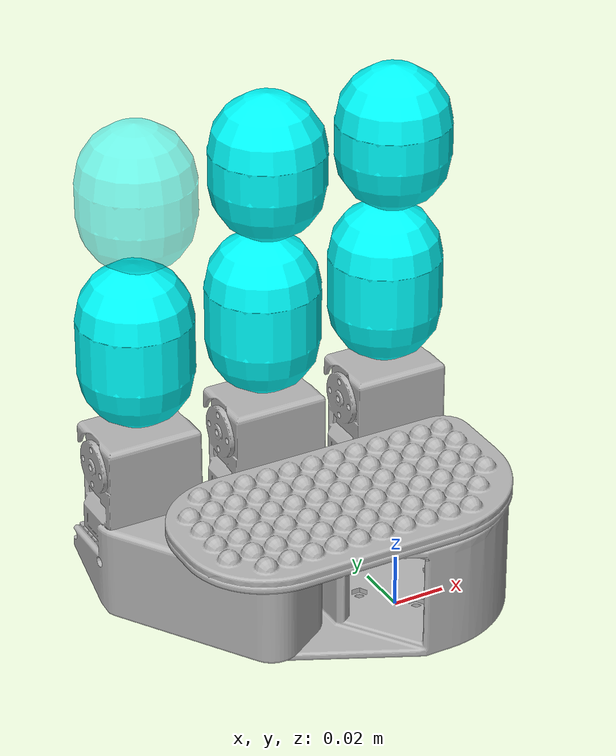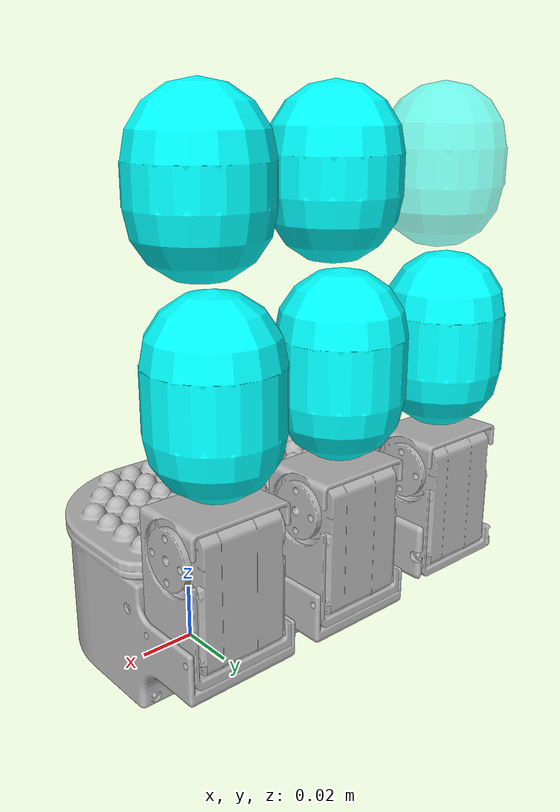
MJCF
<mujoco model="hand_asembly_ver2_URDF_5">
  <compiler angle="radian" meshdir="./mjcf/assets/hand_camera_efim"/>
  <option iterations="20"/>

  <default>
    <joint damping=".5"/>
    <position kp="1"/>
    <geom density="800" rgba="0.7 0.7 0.7 1" contype="0" conaffinity="0" group="0"/>

    <default class="colision_A">
      <geom type="box" rgba="0.1 0.5 0.1 0.0" contype="2" conaffinity="3" group="1"/>
    </default>
    <default class="colision_B">
      <geom type="box" rgba="0.1 0.5 0.1 0.5" contype="4" conaffinity="1" group="2"/>
    </default>

  </default>

  <asset>
    <texture type="skybox" builtin="gradient" rgb1="1 1 1" rgb2="0.5 0.5 0.5" width="265" height="256"/>

    <mesh name="base_link" file="base_link.stl"/>
    <mesh name="proximal_thumb" file="proximal_thumb.stl"/>
    <mesh name="mideal_thumb" file="mideal_thumb.stl"/>
    <mesh name="distal_thumb" file="distal_thumb.stl"/>
    <mesh name="proximal_finger_first" file="proximal_finger_first.stl"/>
    <mesh name="mideal_finger_first" file="mideal_finger_first.stl"/>
    <mesh name="distal_finger_first" file="distal_finger_first.stl"/>
    <mesh name="proximal_finger_second" file="proximal_finger_second.stl"/>
    <mesh name="mideal_finger_second" file="mideal_finger_second.stl"/>
    <mesh name="distal_finger_second" file="distal_finger_second.stl"/>
  </asset>

  <worldbody>
    <light directional="true" diffuse="0.4 0.4 0.4" specular="0.1 0.1 0.1" pos="0 0 5.0" dir="0 0 -1" castshadow="false" />
    <light directional="true" diffuse="0.6 0.6 0.6" specular="0.2 0.2 0.2" pos="0 0 4" dir="0 0 -1" />

    <!-- PALM -->
    <body name="palm" pos="0 0 0">
      <geom type="mesh" mesh="base_link"/>
      <geom pos="-0.0302 0.04346 0.025" quat="1 0 0 0" type="mesh" mesh="proximal_finger_first"/>
      <geom pos="0.0196 0.04346 0.025" quat="1 0 0 0" type="mesh" mesh="proximal_finger_second"/>

      <!-- THUMB -->
      <body name="proximal_thumb" pos="-0.05532 -0.00754 0.0075">
        <inertial pos="-0.015654 0.029955 0.02991" quat="0.664062 0.66104 0.252428 0.241512" mass="0.1524" diaginertia="5.00908e-05 4.26441e-05 3.43441e-05"/>
        <joint name="joint_proximal_thumb" pos="0 0 0" axis="0 0 -1" range="-3.14 0"/>
        <geom type="mesh" mesh="proximal_thumb"/>

        <body name="mideal_thumb" pos="-0.024495 0.05232 0.05561">
          <inertial pos="0.00038305 -0.0013227 0.042746" quat="0.692641 0.0241494 -0.0128903 0.720763" mass="0.080951" diaginertia="2.93704e-05 2.29283e-05 1.49522e-05"/>
          <joint name="joint_mideal_thumb" pos="0 0 0" axis="1 0 0" range="-1.0 1.0"/>

          <!-- CAPSULE -->
          <geom name = "mideal_thumb" type="capsule" size="0.021 0.01" pos="0 0 0.045" rgba="0 1 1 1"/>

          <body name="distal_thumb" pos="0 0 0.05861">
            <joint name="joint_distal_thumb" pos="0 0 0" axis="1 0 0" range="-1.57 1.57"/>
            <!-- CAPSULE -->
            <geom name = "distal_thumb" type="capsule" size="0.021 0.006" pos="0 -0.0045 0.045" rgba="0 1 1 0.5"/>

          </body>

        </body>
      </body>

      <!-- FINGER FIRST -->
      <body name="mideal_finger_first" pos="-0.029825 0.04486 0.06311">
        <inertial pos="0.00038305 -0.00132274 0.0427465" quat="0.692641 0.0241503 -0.0128906 0.720763" mass="0.0809511" diaginertia="2.93701e-05 2.2928e-05 1.49524e-05"/>
        <joint name="joint_mideal_finger_first" pos="0 0 0" axis="1 0 0" range="-1.0 1.0"/>

        <!-- CAPSULE -->
        <geom name = "mideal_f_finger" type="capsule" size="0.021 0.01" pos="0 0 0.045" rgba="0 1 1 1"/>

        <body name="distal_finger_first" pos="0 0 0.05861">
          <inertial pos="0.000332750982547083 -0.00618584483055741 0.039307871683025" quat="0.707098 0.00326816 -0.00326978 0.7071" mass="0.0250979" diaginertia="1.61254e-05 1.12577e-05 9.06401e-06"/>
          <joint name="joint_distal_finger_first" pos="0 0 0" axis="1 0 0" range="-1.57 1.57"/>

          <!-- CAPSULE -->
          <geom name = "distal_f_finger" type="capsule" size="0.021 0.006" pos="0 -0.0045 0.045" rgba="0 1 1 1"/>

        </body>

      </body>

      <!-- FINGER SECOND -->
      <body name="mideal_finger_second" pos="0.019975 0.04486 0.06311">
        <inertial pos="0.00038305 -0.00132274 0.0427465" quat="0.692641 0.0241503 -0.0128906 0.720763" mass="0.0809511" diaginertia="2.93701e-05 2.2928e-05 1.49524e-05"/>
        <joint name="joint_mideal_finger_second" pos="0 0 0" axis="1 0 0" range="-1.0 1.0"/>

        <!-- CAPSULE -->
        <geom name = "mideal_s_finger" type="capsule" size="0.021 0.01" pos="0 0 0.045" rgba="0 1 1 1"/>

        <body name="distal_finger_second" pos="0 0 0.05861">
          <inertial pos="0.000332750982547083 -0.00618584483055741 0.039307871683025" quat="0.707098 0.00326816 -0.00326978 0.7071" mass="0.0250979" diaginertia="1.61254e-05 1.12577e-05 9.06401e-06"/>
          <joint name="joint_distal_finger_second" pos="0 0 0" axis="1 0 0" range="-1.57 1.57"/>

          <!-- CAPSULE -->
          <geom name = "distal_s_finger" type="capsule" size="0.021 0.006" pos="0 -0.0045 0.045" rgba="0 1 1 1"/>

        </body>

      </body>
    </body>
  </worldbody>

  <actuator>
    <position name="thumb_0" joint="joint_proximal_thumb" ctrlrange="-3.14 0"/>
    <position name="thumb_1" joint="joint_mideal_thumb" ctrlrange="-1.0 1.0"/>
    <position name="thumb_2" joint="joint_distal_thumb" ctrlrange="-1.57 1.57"/>
    <position name="f_finger_0" joint="joint_mideal_finger_first" ctrlrange="-1.0 1.0"/>
    <position name="f_finger_1" joint="joint_distal_finger_first" ctrlrange="-1.57 1.57"/>
    <position name="s_finger_0" joint="joint_mideal_finger_second" ctrlrange="-1.0 1.0"/>
    <position name="s_finger_1" joint="joint_distal_finger_second" ctrlrange="-1.57 1.57"/>
  </actuator>

</mujoco>
